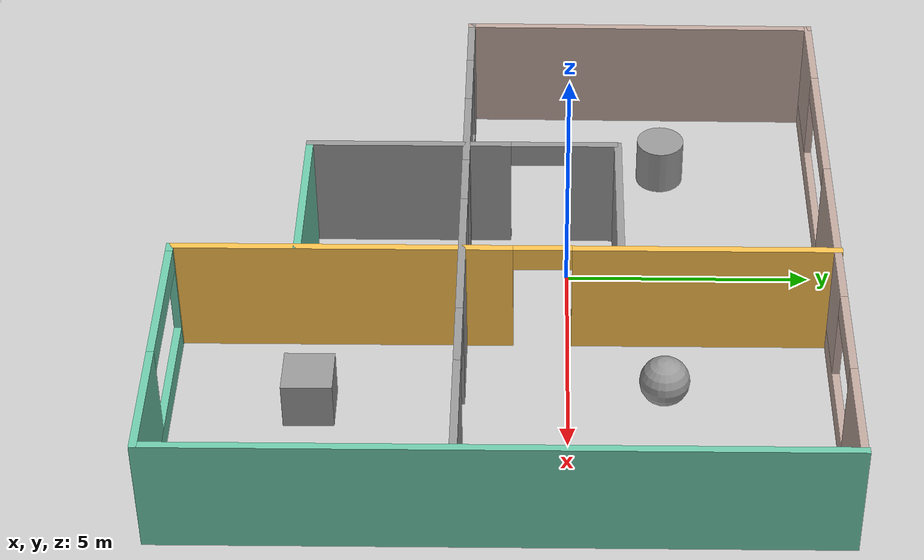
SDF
<sdf version="1.7">
 <world name="default">
  <light name="sun" type="directional">
   <pose>0 0 10 0 -0 0</pose>
   <diffuse>0.8 0.8 0.8 1</diffuse>
   <specular>0.2 0.2 0.2 1</specular>
   <attenuation>
    <range>1000</range>
    <constant>0.9</constant>
    <linear>0.01</linear>
    <quadratic>0.001</quadratic>
   </attenuation>
   <direction>-0.5 0.1 -0.9</direction>
   <spot><inner_angle>0</inner_angle><outer_angle>0</outer_angle><falloff>0</falloff></spot>
  </light>
  <model name="ground_plane">
   <static>1</static>
   <link name="link">
    <collision name="collision">
     <geometry><plane><normal>0 0 1</normal><size>100 100</size></plane></geometry>
     <surface>
      <contact><collide_bitmask>65535</collide_bitmask></contact>
      <friction><ode><mu>100</mu><mu2>50</mu2></ode></friction>
     </surface>
    </collision>
    <visual name="visual">
     <cast_shadows>0</cast_shadows>
     <geometry><plane><normal>0 0 1</normal><size>100 100</size></plane></geometry>
     <material>
      <script><uri>file://media/materials/scripts/gazebo.material</uri><name>Gazebo/Grey</name></script>
     </material>
    </visual>
   </link>
  </model>
  <gravity>0 0 -9.8</gravity>
  <magnetic_field>6e-06 2.3e-05 -4.2e-05</magnetic_field>
  <atmosphere type="adiabatic"/>
  <physics name="default_physics" default="0" type="ode">
   <max_step_size>0.001</max_step_size>
   <real_time_factor>1</real_time_factor>
   <real_time_update_rate>1000</real_time_update_rate>
  </physics>
  <scene><ambient>0.4 0.4 0.4 1</ambient><background>0.7 0.7 0.7 1</background><shadows>1</shadows></scene>
  <spherical_coordinates>
   <surface_model>EARTH_WGS84</surface_model>
   <latitude_deg>0</latitude_deg>
   <longitude_deg>0</longitude_deg>
   <elevation>0</elevation>
   <heading_deg>0</heading_deg>
  </spherical_coordinates>
  <model name="robot_house_1">
   <pose>1.01157 -1.2612 0 0 -0 0</pose>
   <link name="Wall_1">
    <collision name="Wall_1_Collision">
     <geometry><box><size>3.5 0.15 2.5</size></box></geometry>
     <pose>0 0 1.25 0 -0 0</pose>
    </collision>
    <visual name="Wall_1_Visual">
     <pose>0 0 1.25 0 -0 0</pose>
     <geometry><box><size>3.5 0.15 2.5</size></box></geometry>
     <material>
      <script><uri>file://media/materials/scripts/gazebo.material</uri><name>Gazebo/Grey</name></script>
      <ambient>1 1 1 1</ambient>
     </material>
     <meta><layer>0</layer></meta>
    </visual>
    <pose>-0.651221 2.29142 0 0 -0 0</pose>
   </link>
   <link name="Wall_12">
    <pose>-0.034639 6.52402 0 0 -0 3.14159</pose>
    <visual name="Wall_12_Visual_0">
     <pose>-5.56193 0 1.25 0 -0 0</pose>
     <geometry><box><size>2.12614 0.15 2.5</size></box></geometry>
     <material>
      <script><uri>file://media/materials/scripts/gazebo.material</uri><name>Gazebo/Grey</name></script>
      <ambient>0.760784 0.662745 0.627451 1</ambient>
     </material>
     <meta><layer>0</layer></meta>
    </visual>
    <collision name="Wall_12_Collision_0">
     <geometry><box><size>2.12614 0.15 2.5</size></box></geometry>
     <pose>-5.56193 0 1.25 0 -0 0</pose>
    </collision>
    <visual name="Wall_12_Visual_1">
     <pose>1.06307 0 0.25 0 -0 0</pose>
     <geometry><box><size>11.1239 0.15 0.5</size></box></geometry>
     <material>
      <script><uri>file://media/materials/scripts/gazebo.material</uri><name>Gazebo/Grey</name></script>
      <ambient>0.760784 0.662745 0.627451 1</ambient>
     </material>
     <meta><layer>0</layer></meta>
    </visual>
    <collision name="Wall_12_Collision_1">
     <geometry><box><size>11.1239 0.15 0.5</size></box></geometry>
     <pose>1.06307 0 0.25 0 -0 0</pose>
    </collision>
    <visual name="Wall_12_Visual_2">
     <pose>-0.461767 0 1.5 0 -0 0</pose>
     <geometry><box><size>3.99403 0.15 2</size></box></geometry>
     <material>
      <script><uri>file://media/materials/scripts/gazebo.material</uri><name>Gazebo/Grey</name></script>
      <ambient>0.760784 0.662745 0.627451 1</ambient>
     </material>
     <meta><layer>0</layer></meta>
    </visual>
    <collision name="Wall_12_Collision_2">
     <geometry><box><size>3.99403 0.15 2</size></box></geometry>
     <pose>-0.461767 0 1.5 0 -0 0</pose>
    </collision>
    <visual name="Wall_12_Visual_3">
     <pose>5.65963 0 1.5 0 -0 0</pose>
     <geometry><box><size>1.93075 0.15 2</size></box></geometry>
     <material>
      <script><uri>file://media/materials/scripts/gazebo.material</uri><name>Gazebo/Grey</name></script>
      <ambient>0.760784 0.662745 0.627451 1</ambient>
     </material>
     <meta><layer>0</layer></meta>
    </visual>
    <collision name="Wall_12_Collision_3">
     <geometry><box><size>1.93075 0.15 2</size></box></geometry>
     <pose>5.65963 0 1.5 0 -0 0</pose>
    </collision>
    <visual name="Wall_12_Visual_4">
     <pose>-3.47882 0 2.25 0 -0 0</pose>
     <geometry><box><size>2.04008 0.15 0.5</size></box></geometry>
     <material>
      <script><uri>file://media/materials/scripts/gazebo.material</uri><name>Gazebo/Grey</name></script>
      <ambient>0.760784 0.662745 0.627451 1</ambient>
     </material>
     <meta><layer>0</layer></meta>
    </visual>
    <collision name="Wall_12_Collision_4">
     <geometry><box><size>2.04008 0.15 0.5</size></box></geometry>
     <pose>-3.47882 0 2.25 0 -0 0</pose>
    </collision>
    <visual name="Wall_12_Visual_5">
     <pose>3.11475 0 2.25 0 -0 0</pose>
     <geometry><box><size>3.159 0.15 0.5</size></box></geometry>
     <material>
      <script><uri>file://media/materials/scripts/gazebo.material</uri><name>Gazebo/Grey</name></script>
      <ambient>0.760784 0.662745 0.627451 1</ambient>
     </material>
     <meta><layer>0</layer></meta>
    </visual>
    <collision name="Wall_12_Collision_5">
     <geometry><box><size>3.159 0.15 0.5</size></box></geometry>
     <pose>3.11475 0 2.25 0 -0 0</pose>
    </collision>
   </link>
   <link name="Wall_14">
    <pose>-0.080524 -0.825975 0 0 -0 0</pose>
    <visual name="Wall_14_Visual_0">
     <pose>-5.92219 0 1.25 0 -0 0</pose>
     <geometry><box><size>1.40562 0.15 2.5</size></box></geometry>
     <material>
      <script><uri>file://media/materials/scripts/gazebo.material</uri><name>Gazebo/Grey</name></script>
      <ambient>1 1 1 1</ambient>
     </material>
     <meta><layer>0</layer></meta>
    </visual>
    <collision name="Wall_14_Collision_0">
     <geometry><box><size>1.40562 0.15 2.5</size></box></geometry>
     <pose>-5.92219 0 1.25 0 -0 0</pose>
    </collision>
    <visual name="Wall_14_Visual_1">
     <pose>1.25225 0 1.25 0 -0 0</pose>
     <geometry><box><size>3.34616 0.15 2.5</size></box></geometry>
     <material>
      <script><uri>file://media/materials/scripts/gazebo.material</uri><name>Gazebo/Grey</name></script>
      <ambient>1 1 1 1</ambient>
     </material>
     <meta><layer>0</layer></meta>
    </visual>
    <collision name="Wall_14_Collision_1">
     <geometry><box><size>3.34616 0.15 2.5</size></box></geometry>
     <pose>1.25225 0 1.25 0 -0 0</pose>
    </collision>
    <visual name="Wall_14_Visual_2">
     <pose>5.50676 0 1.25 0 -0 0</pose>
     <geometry><box><size>2.23649 0.15 2.5</size></box></geometry>
     <material>
      <script><uri>file://media/materials/scripts/gazebo.material</uri><name>Gazebo/Grey</name></script>
      <ambient>1 1 1 1</ambient>
     </material>
     <meta><layer>0</layer></meta>
    </visual>
    <collision name="Wall_14_Collision_2">
     <geometry><box><size>2.23649 0.15 2.5</size></box></geometry>
     <pose>5.50676 0 1.25 0 -0 0</pose>
    </collision>
    <visual name="Wall_14_Visual_3">
     <pose>-3.46402 0 0.25 0 -0 0</pose>
     <geometry><box><size>3.51073 0.15 0.5</size></box></geometry>
     <material>
      <script><uri>file://media/materials/scripts/gazebo.material</uri><name>Gazebo/Grey</name></script>
      <ambient>1 1 1 1</ambient>
     </material>
     <meta><layer>0</layer></meta>
    </visual>
    <collision name="Wall_14_Collision_3">
     <geometry><box><size>3.51073 0.15 0.5</size></box></geometry>
     <pose>-3.46402 0 0.25 0 -0 0</pose>
    </collision>
    <visual name="Wall_14_Visual_4">
     <pose>-2.77252 0 1.5 0 -0 0</pose>
     <geometry><box><size>2.12773 0.15 2</size></box></geometry>
     <material>
      <script><uri>file://media/materials/scripts/gazebo.material</uri><name>Gazebo/Grey</name></script>
      <ambient>1 1 1 1</ambient>
     </material>
     <meta><layer>0</layer></meta>
    </visual>
    <collision name="Wall_14_Collision_4">
     <geometry><box><size>2.12773 0.15 2</size></box></geometry>
     <pose>-2.77252 0 1.5 0 -0 0</pose>
    </collision>
    <visual name="Wall_14_Visual_5">
     <pose>-4.52788 0 2.25 0 -0 0</pose>
     <geometry><box><size>1.383 0.15 0.5</size></box></geometry>
     <material>
      <script><uri>file://media/materials/scripts/gazebo.material</uri><name>Gazebo/Grey</name></script>
      <ambient>1 1 1 1</ambient>
     </material>
     <meta><layer>0</layer></meta>
    </visual>
    <collision name="Wall_14_Collision_5">
     <geometry><box><size>1.383 0.15 0.5</size></box></geometry>
     <pose>-4.52788 0 2.25 0 -0 0</pose>
    </collision>
    <visual name="Wall_14_Visual_6">
     <pose>3.65692 0 2.25 0 -0 0</pose>
     <geometry><box><size>1.46318 0.15 0.5</size></box></geometry>
     <material>
      <script><uri>file://media/materials/scripts/gazebo.material</uri><name>Gazebo/Grey</name></script>
      <ambient>1 1 1 1</ambient>
     </material>
     <meta><layer>0</layer></meta>
    </visual>
    <collision name="Wall_14_Collision_6">
     <geometry><box><size>1.46318 0.15 0.5</size></box></geometry>
     <pose>3.65692 0 2.25 0 -0 0</pose>
    </collision>
    <visual name="Wall_14_Visual_7">
     <pose>-1.06474 0 2.25 0 -0 0</pose>
     <geometry><box><size>1.28782 0.15 0.5</size></box></geometry>
     <material>
      <script><uri>file://media/materials/scripts/gazebo.material</uri><name>Gazebo/Grey</name></script>
      <ambient>1 1 1 1</ambient>
     </material>
     <meta><layer>0</layer></meta>
    </visual>
    <collision name="Wall_14_Collision_7">
     <geometry><box><size>1.28782 0.15 0.5</size></box></geometry>
     <pose>-1.06474 0 2.25 0 -0 0</pose>
    </collision>
   </link>
   <link name="Wall_21">
    <pose>1.03099 0 0 0 0 -1.5708</pose>
    <visual name="Wall_21_Visual_0">
     <pose>-3.98116 0 1.25 0 -0 0</pose>
     <geometry><box><size>5.28768 0.15 2.5</size></box></geometry>
     <material>
      <script><uri>file://media/materials/scripts/gazebo.material</uri><name>Gazebo/Grey</name></script>
      <ambient>1 0.764706 0.305882 1</ambient>
     </material>
     <meta><layer>0</layer></meta>
    </visual>
    <collision name="Wall_21_Collision_0">
     <geometry><box><size>5.28768 0.15 2.5</size></box></geometry>
     <pose>-3.98116 0 1.25 0 -0 0</pose>
    </collision>
    <visual name="Wall_21_Visual_1">
     <pose>3.22458 0 1.25 0 -0 0</pose>
     <geometry><box><size>6.80084 0.15 2.5</size></box></geometry>
     <material>
      <script><uri>file://media/materials/scripts/gazebo.material</uri><name>Gazebo/Grey</name></script>
      <ambient>1 0.764706 0.305882 1</ambient>
     </material>
     <meta><layer>0</layer></meta>
    </visual>
    <collision name="Wall_21_Collision_1">
     <geometry><box><size>6.80084 0.15 2.5</size></box></geometry>
     <pose>3.22458 0 1.25 0 -0 0</pose>
    </collision>
    <visual name="Wall_21_Visual_2">
     <pose>-0.756578 0 2.25 0 -0 0</pose>
     <geometry><box><size>1.16148 0.15 0.5</size></box></geometry>
     <material>
      <script><uri>file://media/materials/scripts/gazebo.material</uri><name>Gazebo/Grey</name></script>
      <ambient>1 0.764706 0.305882 1</ambient>
     </material>
     <meta><layer>0</layer></meta>
    </visual>
    <collision name="Wall_21_Collision_2">
     <geometry><box><size>1.16148 0.15 0.5</size></box></geometry>
     <pose>-0.756578 0 2.25 0 -0 0</pose>
    </collision>
   </link>
   <link name="Wall_22">
    <pose>3.83099 -6.55 0 0 -0 0</pose>
    <visual name="Wall_22_Visual_0">
     <pose>-2.75633 0 1.25 0 -0 0</pose>
     <geometry><box><size>0.237332 0.15 2.5</size></box></geometry>
     <material>
      <script><uri>file://media/materials/scripts/gazebo.material</uri><name>Gazebo/Grey</name></script>
      <ambient>0.435294 0.796078 0.67451 1</ambient>
     </material>
     <meta><layer>0</layer></meta>
    </visual>
    <collision name="Wall_22_Collision_0">
     <geometry><box><size>0.237332 0.15 2.5</size></box></geometry>
     <pose>-2.75633 0 1.25 0 -0 0</pose>
    </collision>
    <visual name="Wall_22_Visual_1">
     <pose>0.118666 0 0.25 0 -0 0</pose>
     <geometry><box><size>5.51267 0.15 0.5</size></box></geometry>
     <material>
      <script><uri>file://media/materials/scripts/gazebo.material</uri><name>Gazebo/Grey</name></script>
      <ambient>0.435294 0.796078 0.67451 1</ambient>
     </material>
     <meta><layer>0</layer></meta>
    </visual>
    <collision name="Wall_22_Collision_1">
     <geometry><box><size>5.51267 0.15 0.5</size></box></geometry>
     <pose>0.118666 0 0.25 0 -0 0</pose>
    </collision>
    <visual name="Wall_22_Visual_2">
     <pose>1.59717 0 1.5 0 -0 0</pose>
     <geometry><box><size>2.55567 0.15 2</size></box></geometry>
     <material>
      <script><uri>file://media/materials/scripts/gazebo.material</uri><name>Gazebo/Grey</name></script>
      <ambient>0.435294 0.796078 0.67451 1</ambient>
     </material>
     <meta><layer>0</layer></meta>
    </visual>
    <collision name="Wall_22_Collision_2">
     <geometry><box><size>2.55567 0.15 2</size></box></geometry>
     <pose>1.59717 0 1.5 0 -0 0</pose>
    </collision>
    <visual name="Wall_22_Visual_3">
     <pose>-1.15917 0 2.25 0 -0 0</pose>
     <geometry><box><size>2.957 0.15 0.5</size></box></geometry>
     <material>
      <script><uri>file://media/materials/scripts/gazebo.material</uri><name>Gazebo/Grey</name></script>
      <ambient>0.435294 0.796078 0.67451 1</ambient>
     </material>
     <meta><layer>0</layer></meta>
    </visual>
    <collision name="Wall_22_Collision_3">
     <geometry><box><size>2.957 0.15 0.5</size></box></geometry>
     <pose>-1.15917 0 2.25 0 -0 0</pose>
    </collision>
   </link>
   <link name="Wall_23">
    <collision name="Wall_23_Collision">
     <geometry><box><size>13.25 0.15 2.5</size></box></geometry>
     <pose>0 0 1.25 0 -0 0</pose>
    </collision>
    <visual name="Wall_23_Visual">
     <pose>0 0 1.25 0 -0 0</pose>
     <geometry><box><size>13.25 0.15 2.5</size></box></geometry>
     <material>
      <script><uri>file://media/materials/scripts/gazebo.material</uri><name>Gazebo/Grey</name></script>
      <ambient>0.435294 0.796078 0.67451 1</ambient>
     </material>
     <meta><layer>0</layer></meta>
    </visual>
    <pose>6.63099 0 0 0 -0 1.5708</pose>
   </link>
   <link name="Wall_3">
    <pose>-2.32642 -0.883753 0 0 0 -1.57086</pose>
    <visual name="Wall_3_Visual_0">
     <pose>-2.72795 0 1.25 0 -0 0</pose>
     <geometry><box><size>1.0441 0.15 2.5</size></box></geometry>
     <material>
      <script><uri>file://media/materials/scripts/gazebo.material</uri><name>Gazebo/Grey</name></script>
      <ambient>1 1 1 1</ambient>
     </material>
     <meta><layer>0</layer></meta>
    </visual>
    <collision name="Wall_3_Collision_0">
     <geometry><box><size>1.0441 0.15 2.5</size></box></geometry>
     <pose>-2.72795 0 1.25 0 -0 0</pose>
    </collision>
    <visual name="Wall_3_Visual_1">
     <pose>1.13799 0 1.25 0 -0 0</pose>
     <geometry><box><size>4.22403 0.15 2.5</size></box></geometry>
     <material>
      <script><uri>file://media/materials/scripts/gazebo.material</uri><name>Gazebo/Grey</name></script>
      <ambient>1 1 1 1</ambient>
     </material>
     <meta><layer>0</layer></meta>
    </visual>
    <collision name="Wall_3_Collision_1">
     <geometry><box><size>4.22403 0.15 2.5</size></box></geometry>
     <pose>1.13799 0 1.25 0 -0 0</pose>
    </collision>
    <visual name="Wall_3_Visual_2">
     <pose>-1.58996 0 2.25 0 -0 0</pose>
     <geometry><box><size>1.23187 0.15 0.5</size></box></geometry>
     <material>
      <script><uri>file://media/materials/scripts/gazebo.material</uri><name>Gazebo/Grey</name></script>
      <ambient>1 1 1 1</ambient>
     </material>
     <meta><layer>0</layer></meta>
    </visual>
    <collision name="Wall_3_Collision_2">
     <geometry><box><size>1.23187 0.15 0.5</size></box></geometry>
     <pose>-1.58996 0 2.25 0 -0 0</pose>
    </collision>
   </link>
   <link name="Wall_4">
    <collision name="Wall_4_Collision">
     <geometry><box><size>3.5 0.15 2.5</size></box></geometry>
     <pose>0 0 1.25 0 -0 0</pose>
    </collision>
    <visual name="Wall_4_Visual">
     <pose>0 0 1.25 0 -0 0</pose>
     <geometry><box><size>3.5 0.15 2.5</size></box></geometry>
     <material>
      <script><uri>file://media/materials/scripts/gazebo.material</uri><name>Gazebo/Grey</name></script>
      <ambient>0.435294 0.796078 0.67451 1</ambient>
     </material>
     <meta><layer>0</layer></meta>
    </visual>
    <pose>-0.651621 -4.05893 0 0 -0 0</pose>
   </link>
   <link name="Wall_9">
    <collision name="Wall_9_Collision">
     <geometry><box><size>7.5 0.15 2.5</size></box></geometry>
     <pose>0 0 1.25 0 -0 0</pose>
    </collision>
    <visual name="Wall_9_Visual">
     <pose>0 0 1.25 0 -0 0</pose>
     <geometry><box><size>7.5 0.15 2.5</size></box></geometry>
     <material>
      <script><uri>file://media/materials/scripts/gazebo.material</uri><name>Gazebo/Grey</name></script>
      <ambient>0.760784 0.662745 0.627451 1</ambient>
     </material>
     <meta><layer>0</layer></meta>
    </visual>
    <pose>-6.60758 2.84903 0 0 0 -1.57704</pose>
   </link>
   <static>1</static>
  </model>
  <model name="unit_box">
   <pose>4.00385 -5.036 0.499995 0 1e-05 0</pose>
   <link name="link">
    <inertial>
     <mass>1</mass>
     <inertia>
      <ixx>0.166667</ixx>
      <ixy>0</ixy>
      <ixz>0</ixz>
      <iyy>0.166667</iyy>
      <iyz>0</iyz>
      <izz>0.166667</izz>
     </inertia>
    </inertial>
    <collision name="collision"><geometry><box><size>1 1 1</size></box></geometry></collision>
    <visual name="visual">
     <geometry><box><size>1 1 1</size></box></geometry>
     <material>
      <script><name>Gazebo/Grey</name><uri>file://media/materials/scripts/gazebo.material</uri></script>
     </material>
    </visual>
   </link>
  </model>
  <model name="unit_sphere">
   <pose>3.68192 1.89946 0.5 0 -0 0</pose>
   <link name="link">
    <inertial>
     <mass>1</mass>
     <inertia><ixx>0.1</ixx><ixy>0</ixy><ixz>0</ixz><iyy>0.1</iyy><iyz>0</iyz><izz>0.1</izz></inertia>
    </inertial>
    <collision name="collision"><geometry><sphere><radius>0.5</radius></sphere></geometry></collision>
    <visual name="visual">
     <geometry><sphere><radius>0.5</radius></sphere></geometry>
     <material>
      <script><name>Gazebo/Grey</name><uri>file://media/materials/scripts/gazebo.material</uri></script>
     </material>
    </visual>
   </link>
  </model>
  <model name="unit_cylinder">
   <pose>-3.42823 2.02411 0.499997 3e-06 4e-06 -0</pose>
   <link name="link">
    <inertial>
     <mass>1</mass>
     <inertia><ixx>0.145833</ixx><ixy>0</ixy><ixz>0</ixz><iyy>0.145833</iyy><iyz>0</iyz><izz>0.125</izz></inertia>
    </inertial>
    <collision name="collision">
     <geometry><cylinder><radius>0.5</radius><length>1</length></cylinder></geometry>
    </collision>
    <visual name="visual">
     <geometry><cylinder><radius>0.5</radius><length>1</length></cylinder></geometry>
     <material>
      <script><name>Gazebo/Grey</name><uri>file://media/materials/scripts/gazebo.material</uri></script>
     </material>
    </visual>
   </link>
  </model>
 </world>
</sdf>
